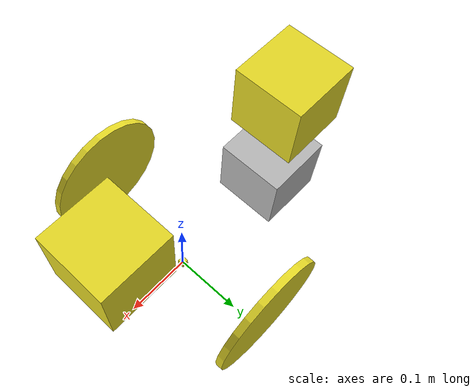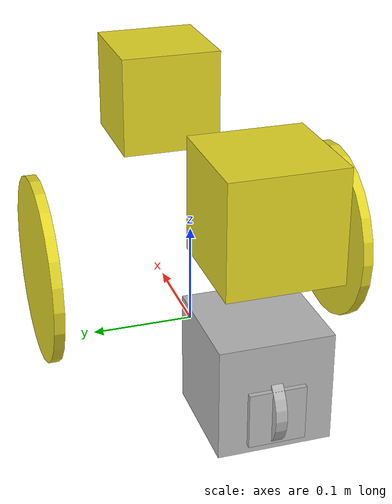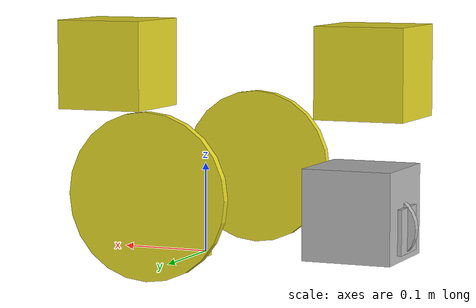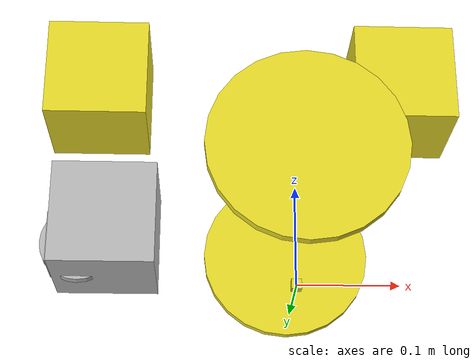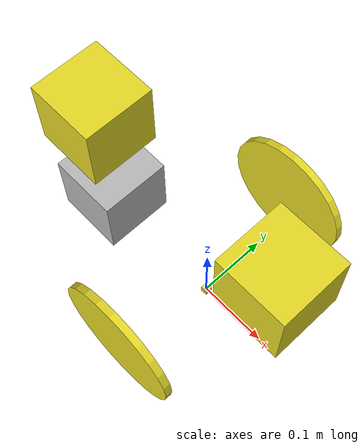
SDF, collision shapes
<sdf version='1.6'>
  <model name='pioneer3dx'>
    <link name='base_link'>
      <pose frame=''>0 0 0 0 -0 0</pose>
      <inertial>
        <pose frame=''>-0.000134 0 0.000673 0 -0 0</pose>
        <mass>3.5101</mass>
        <inertia>
          <ixx>4.00055</ixx>
          <ixy>0</ixy>
          <ixz>0.000109102</ixz>
          <iyy>4.00057</iyy>
          <iyz>0</iyz>
          <izz>4.00002</izz>
        </inertia>
      </inertial>
      <collision name='base_link_collision'>
        <pose frame=''>0 0 0 0 -0 0</pose>
        <geometry>
          <box>
            <size>0.01 0.01 0.01</size>
          </box>
        </geometry>
      </collision>
      <collision name='base_link_fixed_joint_lump__back_sonar_collision_1'>
        <pose frame=''>0.109 0 0.209 0 -0 0</pose>
        <geometry>
          <box>
            <size>0.1 0.1 0.1</size>
          </box>
        </geometry>
      </collision>
      <collision name='base_link_fixed_joint_lump__front_sonar_collision_2'>
        <pose frame=''>-0.198 0 0.208 0 -0 0</pose>
        <geometry>
          <box>
            <size>0.1 0.1 0.1</size>
          </box>
        </geometry>
        <surface>
          <contact>
            <ode/>
          </contact>
          <friction>
            <ode/>
          </friction>
        </surface>
      </collision>
      <collision name='base_link_fixed_joint_lump__left_hub_collision_3'>
        <pose frame=''>0 0.15 0.08 -1.5708 0 0</pose>
        <geometry>
          <cylinder>
            <length>0.01</length>
            <radius>0.09</radius>
          </cylinder>
        </geometry>
        <surface>
          <contact>
            <ode/>
          </contact>
          <friction>
            <ode/>
          </friction>
        </surface>
      </collision>
      <collision name='base_link_fixed_joint_lump__right_hub_collision_4'>
        <pose frame=''>0 -0.15 0.08 -1.5708 0 0</pose>
        <geometry>
          <cylinder>
            <length>0.01</length>
            <radius>0.09</radius>
          </cylinder>
        </geometry>
        <surface>
          <contact>
            <ode/>
          </contact>
          <friction>
            <ode/>
          </friction>
        </surface>
      </collision>
      <visual name='base_link_visual'>
        <pose frame=''>-0.045 0 0.148 0 -0 0</pose>
        <geometry>
          <mesh>
            <scale>1 1 1</scale>
            <uri>model://amr_robots_description/meshes/p3dx_meshes/chassis.stl</uri>
          </mesh>
        </geometry>
      </visual>
      <visual name='base_link_fixed_joint_lump__base_visual_visual_1'>
        <pose frame=''>0.109 0 0.209 0 -0 0</pose>
        <geometry>
          <mesh>
            <scale>1 1 1</scale>
            <uri>model://amr_robots_description/meshes/p3dx_meshes/back_sonar.stl</uri>
          </mesh>
        </geometry>
      </visual>
      <visual name='base_link_fixed_joint_lump__pioneer_geom_visual_2'>
        <pose frame=''>-0.198 0 0.208 0 -0 0</pose>
        <geometry>
          <mesh>
            <scale>1 1 1</scale>
            <uri>model://amr_robots_description/meshes/p3dx_meshes/front_sonar.stl</uri>
          </mesh>
        </geometry>
      </visual>
      <visual name='base_link_fixed_joint_lump__pioneer_geom_visual_3'>
        <pose frame=''>-0.045 0 0.234 0 -0 0</pose>
        <geometry>
          <mesh>
            <scale>1 1 1</scale>
            <uri>model://amr_robots_description/meshes/p3dx_meshes/top.stl</uri>
          </mesh>
        </geometry>
      </visual>
      <visual name='base_link_fixed_joint_lump__left_hub_visual_4'>
        <pose frame=''>0 0.15 0.08 0 -0 0</pose>
        <geometry>
          <mesh>
            <scale>1 1 1</scale>
            <uri>model://amr_robots_description/meshes/p3dx_meshes/left_hubcap.stl</uri>
          </mesh>
        </geometry>
        <material>
          <script>
            <name>Gazebo/Yellow</name>
            <uri>file://media/materials/scripts/gazebo.material</uri>
          </script>
        </material>
      </visual>
      <visual name='base_link_fixed_joint_lump__left_wheel_visual_5'>
        <pose frame=''>0 0.15 0.08 0 -0 0</pose>
        <geometry>
          <mesh>
            <scale>1 1 1</scale>
            <uri>model://amr_robots_description/meshes/p3dx_meshes/left_wheel.stl</uri>
          </mesh>
        </geometry>
      </visual>
      <visual name='base_link_fixed_joint_lump__right_hub_visual_6'>
        <pose frame=''>0 -0.15 0.08 0 -0 0</pose>
        <geometry>
          <mesh>
            <scale>1 1 1</scale>
            <uri>model://amr_robots_description/meshes/p3dx_meshes/right_hubcap.stl</uri>
          </mesh>
        </geometry>
        <material>
          <script>
            <name>Gazebo/Yellow</name>
            <uri>file://media/materials/scripts/gazebo.material</uri>
          </script>
        </material>
      </visual>
      <visual name='base_link_fixed_joint_lump__right_wheel_visual_7'>
        <pose frame=''>0 -0.15 0.08 0 -0 0</pose>
        <geometry>
          <mesh>
            <scale>1 1 1</scale>
            <uri>model://amr_robots_description/meshes/p3dx_meshes/right_wheel.stl</uri>
          </mesh>
        </geometry>
      </visual>
      <velocity_decay/>
      <velocity_decay/>
      <velocity_decay/>
      <gravity>1</gravity>
      <velocity_decay/>
      <self_collide>0</self_collide>
    </link>
    <link name='caster_swivel'>
      <pose frame=''>-0.185 0 0.055 0 -0 0</pose>
      <inertial>
        <pose frame=''>0 0 0 0 -0 0</pose>
        <mass>0.1</mass>
        <inertia>
          <ixx>0.01</ixx>
          <ixy>0</ixy>
          <ixz>0</ixz>
          <iyy>0.01</iyy>
          <iyz>0</iyz>
          <izz>0.01</izz>
        </inertia>
      </inertial>
      <collision name='caster_swivel_collision'>
        <pose frame=''>0 0 0 0 -0 0</pose>
        <geometry>
          <box>
            <size>0.1 0.1 0.1</size>
          </box>
        </geometry>
        <surface>
          <contact>
            <ode/>
          </contact>
          <friction>
            <ode/>
          </friction>
        </surface>
      </collision>
      <visual name='caster_swivel_fixed_joint_lump__pioneer_geom_visual'>
        <pose frame=''>0 0 0 0 -0 0</pose>
        <geometry>
          <mesh>
            <scale>1 1 1</scale>
            <uri>model://amr_robots_description/meshes/p3dx_meshes/caster_swivel.stl</uri>
          </mesh>
        </geometry>
      </visual>
      <gravity>1</gravity>
      <velocity_decay/>
      <self_collide>0</self_collide>
    </link>
    <joint name='base_caster_swivel_joint' type='revolute'>
      <child>caster_swivel</child>
      <parent>base_link</parent>
      <axis>
        <xyz>1 0 0</xyz>
        <limit>
          <lower>-1e+16</lower>
          <upper>1e+16</upper>
        </limit>
        <dynamics>
          <spring_reference>0</spring_reference>
          <spring_stiffness>0</spring_stiffness>
        </dynamics>
        <use_parent_model_frame>1</use_parent_model_frame>
      </axis>
    </joint>
    <link name='caster_wheel'>
      <pose frame=''>-0.211 0 0.039 0 -0 0</pose>
      <inertial>
        <pose frame=''>-0.000318 0 -9.1e-05 0 -0 0</pose>
        <mass>0.11</mass>
        <inertia>
          <ixx>0.0248235</ixx>
          <ixy>-0.00142347</ixy>
          <ixz>0.00100543</ixz>
          <iyy>0.0304364</iyy>
          <iyz>-8.54693e-06</iyz>
          <izz>0.0235281</izz>
        </inertia>
      </inertial>
      <collision name='caster_wheel_collision'>
        <pose frame=''>0 0 0 -1.5708 0 0</pose>
        <geometry>
          <cylinder>
            <length>0.01</length>
            <radius>0.0375</radius>
          </cylinder>
        </geometry>
      </collision>
      <collision name='caster_wheel_fixed_joint_lump__caster_hubcap_collision_1'>
        <pose frame=''>-0.0035 0 -0.001 0 -0 0</pose>
        <geometry>
          <box>
            <size>0.05 0.05 0.05</size>
          </box>
        </geometry>
        <surface>
          <contact>
            <ode/>
          </contact>
          <friction>
            <ode/>
          </friction>
        </surface>
      </collision>
      <visual name='caster_wheel_fixed_joint_lump__pioneer_geom_visual'>
        <pose frame=''>0 0 0 0 -0 0</pose>
        <geometry>
          <mesh>
            <scale>1 1 1</scale>
            <uri>model://amr_robots_description/meshes/p3dx_meshes/caster_wheel.stl</uri>
          </mesh>
        </geometry>
      </visual>
      <visual name='caster_wheel_fixed_joint_lump__pioneer_geom_visual_1'>
        <pose frame=''>-0.0035 0 -0.001 0 -0 0</pose>
        <geometry>
          <mesh>
            <scale>1 1 1</scale>
            <uri>model://amr_robots_description/meshes/p3dx_meshes/caster_hubcap.stl</uri>
          </mesh>
        </geometry>
      </visual>
      <gravity>1</gravity>
      <velocity_decay/>
      <self_collide>0</self_collide>
    </link>
    <joint name='caster_swivel_hubcap_joint' type='revolute'>
      <child>caster_wheel</child>
      <parent>caster_swivel</parent>
      <axis>
        <xyz>0 1 0</xyz>
        <limit>
          <lower>-1e+16</lower>
          <upper>1e+16</upper>
        </limit>
        <dynamics>
          <spring_reference>0</spring_reference>
          <spring_stiffness>0</spring_stiffness>
        </dynamics>
        <use_parent_model_frame>1</use_parent_model_frame>
      </axis>
    </joint>
    <static>0</static>
    <plugin name='differential_drive_controller' filename='libgazebo_ros_diff_drive.so'>
      <alwaysOn>true</alwaysOn>
      <updateRate>100</updateRate>
      <leftJoint>left_wheel_joint</leftJoint>
      <rightJoint>right_wheel_joint</rightJoint>
      <wheelSeparation>0.158</wheelSeparation>
      <wheelDiameter>0.12</wheelDiameter>
      <torque>5</torque>
      <commandTopic>cmd_vel</commandTopic>
      <robotBaseFrame>base_link</robotBaseFrame>
      <odometryTopic>odom</odometryTopic>
      <odometryFrame>odom</odometryFrame>
      <legacyMode>true</legacyMode>
    </plugin>
  </model>
</sdf>
